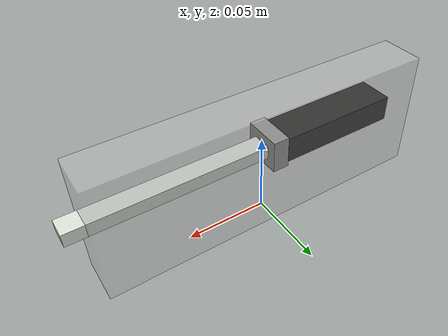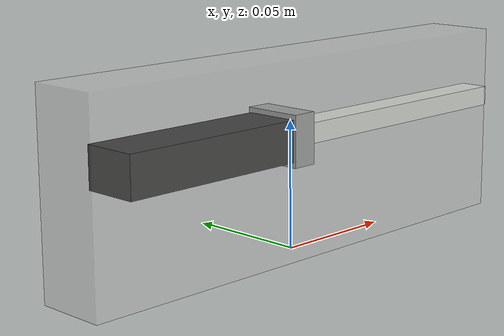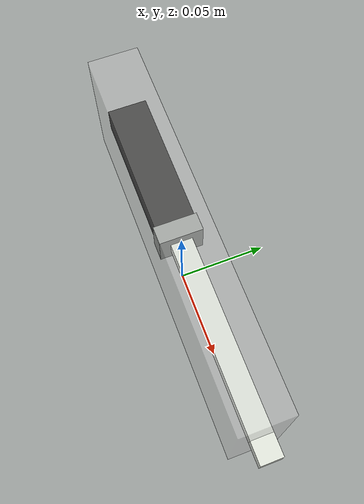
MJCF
<mujoco model="custom_steak_knife">
  <worldbody>
    <body>
      <body name="object">
        <geom
          conaffinity="0"
          contype="0"
          group="1"
          pos="0.042 0 0.045"
          rgba="0.86 0.88 0.84 1"
          size="0.075 0.006 0.004"
          type="box"
        />
        <geom
          conaffinity="0"
          contype="0"
          group="1"
          pos="-0.047 0 0.045"
          rgba="0.08 0.08 0.075 1"
          size="0.040 0.011 0.008"
          type="box"
        />
        <geom
          conaffinity="0"
          contype="0"
          group="1"
          pos="-0.005 0 0.045"
          rgba="0.56 0.58 0.56 1"
          size="0.005 0.012 0.010"
          type="box"
        />
        <geom
          density="100"
          friction="0.95 0.3 0.1"
          group="0"
          pos="0 0 0.038"
          rgba="0.8 0.8 0.8 0.3"
          size="0.105 0.014 0.038"
          solimp="0.998 0.998 0.001"
          solref="0.001 1"
          type="box"
        />
      </body>
      <site rgba="0 0 0 0" size="0.005" pos="0 0 -0.025" name="bottom_site" />
      <site rgba="0 0 0 0" size="0.005" pos="0 0 0.085" name="top_site" />
      <site rgba="0 0 0 0" size="0.005" pos="0.110 0 0" name="horizontal_radius_site" />
    </body>
  </worldbody>
</mujoco>
